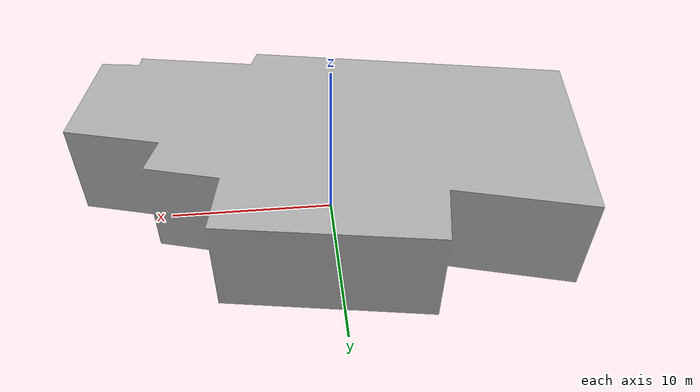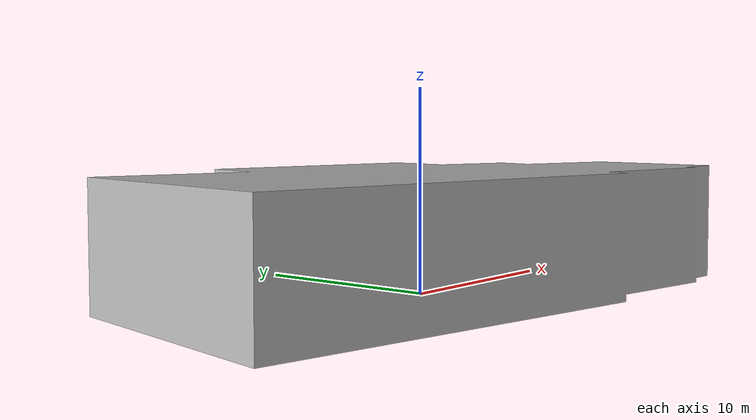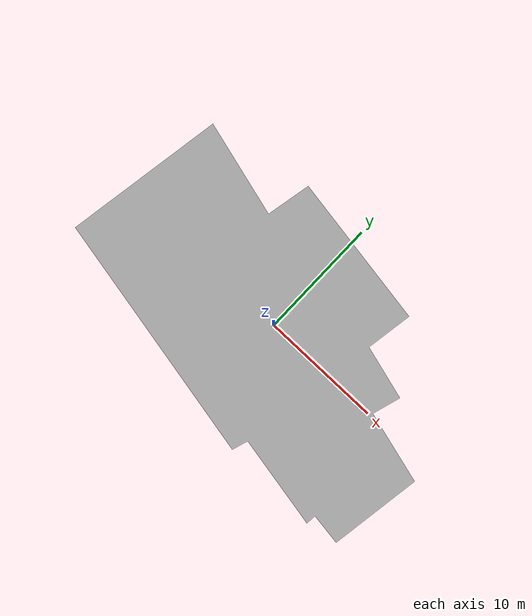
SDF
<?xml version="1.0" ?>
<sdf version="1.7">
  <model name="building_4674_assumed_a_igreja_matriz">
    <static>true</static>
    <link name="building_link">
      <visual name="building_visual">
        <geometry>
          <mesh>
            <uri>model://building_4674_assumed_a_igreja_matriz/meshes/construction_4674_assumed_A_Igreja_matriz_h6m.obj</uri>
          </mesh>
        </geometry>
      </visual>
    <collision name="building_collision">
      <geometry>
        <mesh>
          <uri>model://building_4674_assumed_a_igreja_matriz/meshes/construction_4674_assumed_A_Igreja_matriz_h6m.obj</uri>
        </mesh>
      </geometry>
    </collision>
    </link>
  </model>
</sdf>
